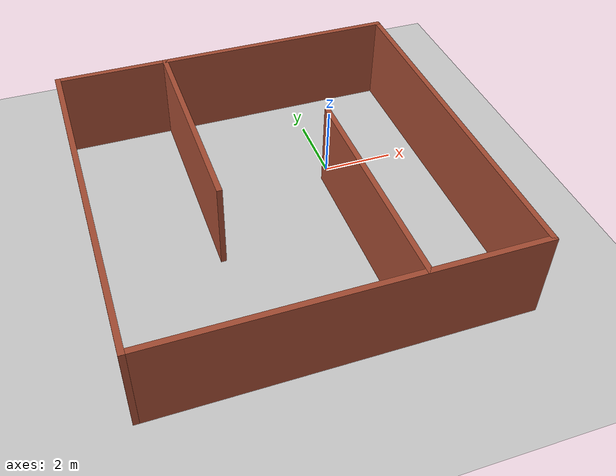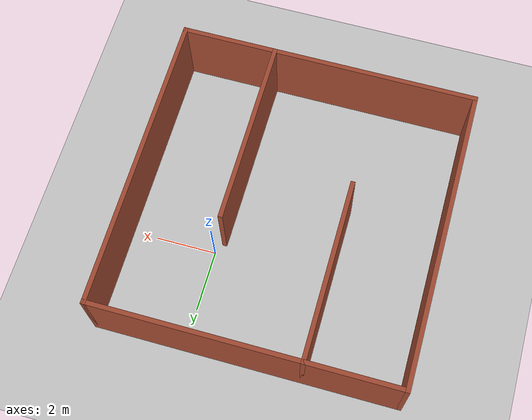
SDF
<sdf version="1.4">
  <world name="default">

    <scene>
      <ambient>0.4 0.4 0.4 1</ambient>
      <background>0.7 0.7 0.7 1</background>
      <shadows>true</shadows>
    </scene>

    <!-- A global light source -->
    <include>
      <uri>model://sun</uri>
    </include>

    <!-- A ground plane -->
    <include>
      <uri>model://ground_plane</uri>
    </include>

    <!-- My Maze -->
    <include>
      <uri>model://maze_4</uri>
	<pose>-2.05 -1.60 0 0 0 0</pose>
    </include>

    <physics type="ode">
      <real_time_update_rate>1000.0</real_time_update_rate>
      <max_step_size>0.001</max_step_size>
      <real_time_factor>1</real_time_factor>
      <ode>
        <solver>
          <type>quick</type>
          <iters>150</iters>
          <precon_iters>0</precon_iters>
          <sor>1.400000</sor>
          <use_dynamic_moi_rescaling>1</use_dynamic_moi_rescaling>
        </solver>
        <constraints>
          <cfm>0.00001</cfm>
          <erp>0.2</erp>
          <contact_max_correcting_vel>2000.000000</contact_max_correcting_vel>
          <contact_surface_layer>0.01000</contact_surface_layer>
        </constraints>
      </ode>
    </physics>
  </world>

</sdf>

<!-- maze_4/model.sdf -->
<sdf version='1.5'>
  <model name='maze_4'>
    <pose frame=''>2.485 -1.135 0 0 -0 0</pose>
    <link name='Wall_0'>
      <collision name='Wall_0_Collision'>
        <geometry>
          <box>
            <size>10 0.15 2.5</size>
          </box>
        </geometry>
        <pose frame=''>0 0 1.25 0 -0 0</pose>
      </collision>
      <visual name='Wall_0_Visual'>
        <pose frame=''>0 0 1.25 0 -0 0</pose>
        <geometry>
          <box>
            <size>10 0.15 2.5</size>
          </box>
        </geometry>
        <material>
          <script>
            <uri>file://media/materials/scripts/gazebo.material</uri>
            <name>Gazebo/Bricks</name>
          </script>
          <ambient>1 1 1 1</ambient>
        </material>
      </visual>
      <pose frame=''>-4.925 -0 0 0 0 -1.5708</pose>
    </link>
    <link name='Wall_10'>
      <collision name='Wall_10_Collision'>
        <geometry>
          <box>
            <size>6.25 0.15 2.5</size>
          </box>
        </geometry>
        <pose frame=''>0 0 1.25 0 -0 0</pose>
      </collision>
      <visual name='Wall_10_Visual'>
        <pose frame=''>0 0 1.25 0 -0 0</pose>
        <geometry>
          <box>
            <size>6.25 0.15 2.5</size>
          </box>
        </geometry>
        <material>
          <script>
            <uri>file://media/materials/scripts/gazebo.material</uri>
            <name>Gazebo/Bricks</name>
          </script>
          <ambient>1 1 1 1</ambient>
        </material>
      </visual>
      <pose frame=''>1.825 -1.875 0 0 -0 1.5708</pose>
    </link>
    <link name='Wall_2'>
      <collision name='Wall_2_Collision'>
        <geometry>
          <box>
            <size>10 0.15 2.5</size>
          </box>
        </geometry>
        <pose frame=''>0 0 1.25 0 -0 0</pose>
      </collision>
      <visual name='Wall_2_Visual'>
        <pose frame=''>0 0 1.25 0 -0 0</pose>
        <geometry>
          <box>
            <size>10 0.15 2.5</size>
          </box>
        </geometry>
        <material>
          <script>
            <uri>file://media/materials/scripts/gazebo.material</uri>
            <name>Gazebo/Bricks</name>
          </script>
          <ambient>1 1 1 1</ambient>
        </material>
      </visual>
      <pose frame=''>-0 4.925 0 0 -0 0</pose>
    </link>
    <link name='Wall_3'>
      <collision name='Wall_3_Collision'>
        <geometry>
          <box>
            <size>10 0.15 2.5</size>
          </box>
        </geometry>
        <pose frame=''>0 0 1.25 0 -0 0</pose>
      </collision>
      <visual name='Wall_3_Visual'>
        <pose frame=''>0 0 1.25 0 -0 0</pose>
        <geometry>
          <box>
            <size>10 0.15 2.5</size>
          </box>
        </geometry>
        <material>
          <script>
            <uri>file://media/materials/scripts/gazebo.material</uri>
            <name>Gazebo/Bricks</name>
          </script>
          <ambient>1 1 1 1</ambient>
        </material>
      </visual>
      <pose frame=''>4.925 -0 0 0 0 -1.5708</pose>
    </link>
    <link name='Wall_4'>
      <collision name='Wall_4_Collision'>
        <geometry>
          <box>
            <size>10 0.15 2.5</size>
          </box>
        </geometry>
        <pose frame=''>0 0 1.25 0 -0 0</pose>
      </collision>
      <visual name='Wall_4_Visual'>
        <pose frame=''>0 0 1.25 0 -0 0</pose>
        <geometry>
          <box>
            <size>10 0.15 2.5</size>
          </box>
        </geometry>
        <material>
          <script>
            <uri>file://media/materials/scripts/gazebo.material</uri>
            <name>Gazebo/Bricks</name>
          </script>
          <ambient>1 1 1 1</ambient>
        </material>
      </visual>
      <pose frame=''>-0 -4.925 0 0 -0 3.14159</pose>
    </link>
    <link name='Wall_7'>
      <collision name='Wall_7_Collision'>
        <geometry>
          <box>
            <size>6 0.15 2.5</size>
          </box>
        </geometry>
        <pose frame=''>0 0 1.25 0 -0 0</pose>
      </collision>
      <visual name='Wall_7_Visual'>
        <pose frame=''>0 0 1.25 0 -0 0</pose>
        <geometry>
          <box>
            <size>6 0.15 2.5</size>
          </box>
        </geometry>
        <material>
          <script>
            <uri>file://media/materials/scripts/gazebo.material</uri>
            <name>Gazebo/Bricks</name>
          </script>
          <ambient>1 1 1 1</ambient>
        </material>
      </visual>
      <pose frame=''>-1.825 2 0 0 0 -1.5708</pose>
    </link>
    <static>1</static>
  </model>
</sdf>
